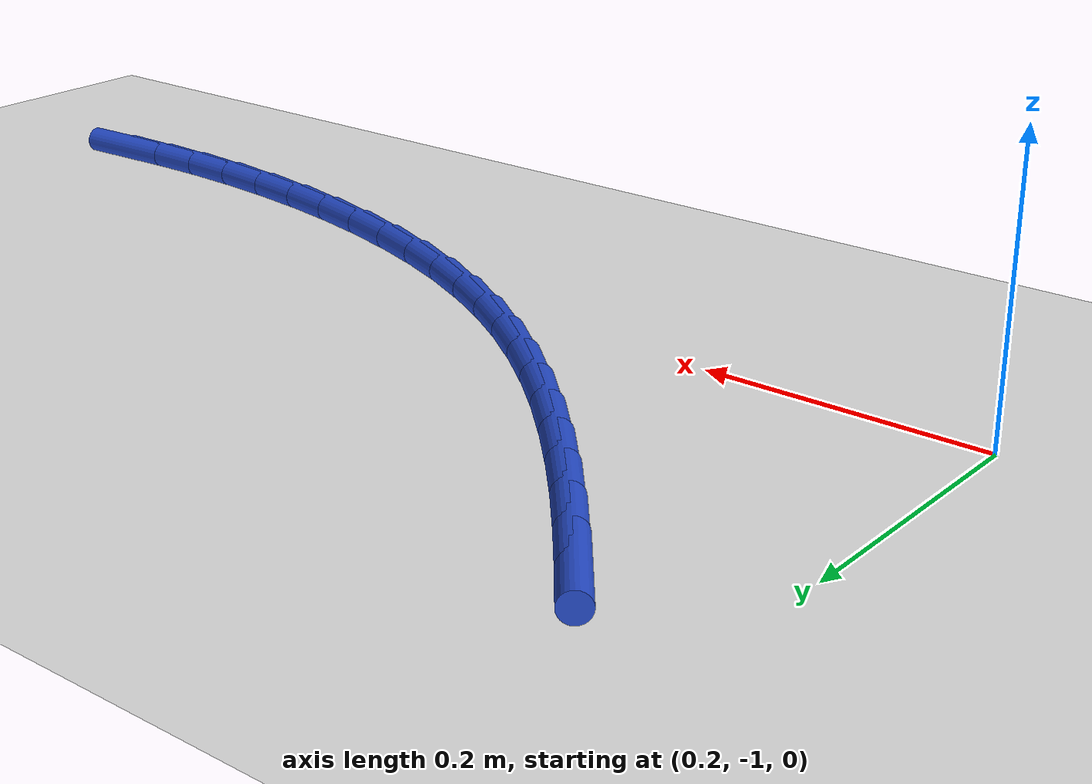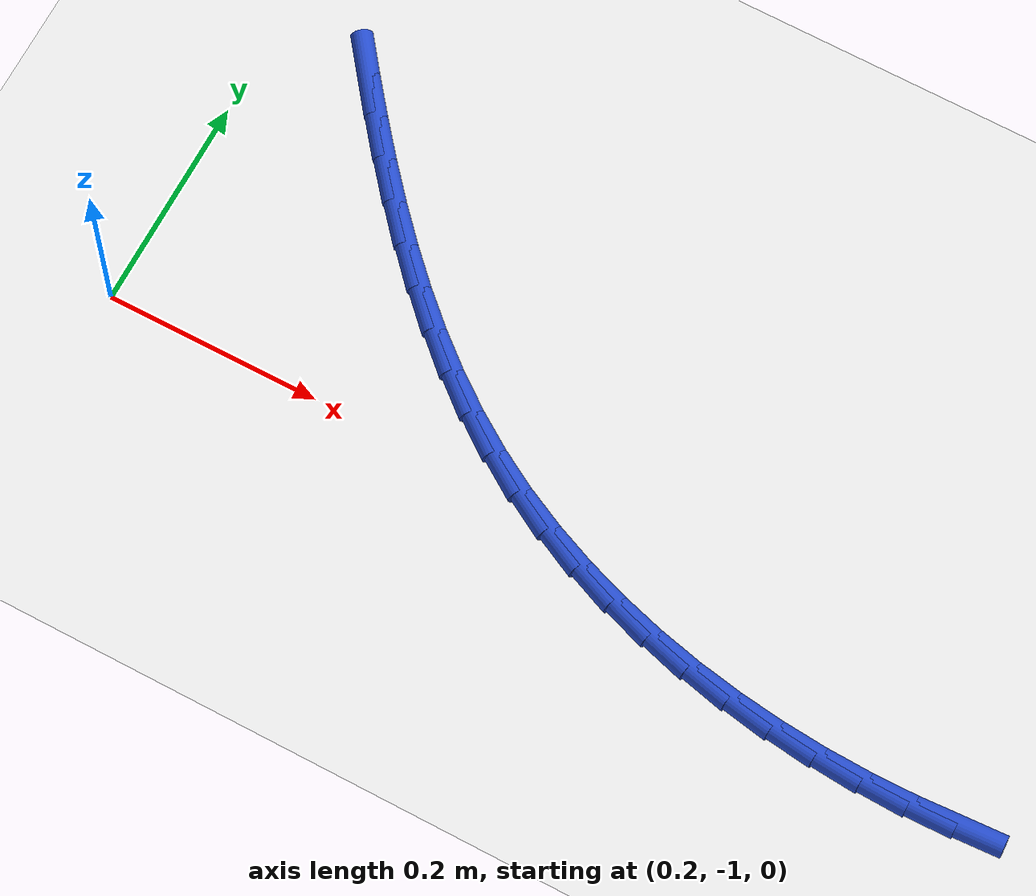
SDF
<sdf version="1.6">
 <world name="default">
  <model name="ground_plane">
   <static>1</static>
   <link name="link">
    <collision name="collision">
     <geometry><plane><normal>0 0 1</normal><size>100 100</size></plane></geometry>
     <surface><friction><ode><mu>100</mu><mu2>50</mu2></ode></friction></surface>
    </collision>
    <visual name="visual">
     <cast_shadows>0</cast_shadows>
     <geometry><plane><normal>0 0 1</normal><size>100 100</size></plane></geometry>
     <material>
      <script><uri>file://media/materials/scripts/gazebo.material</uri><name>Gazebo/WhiteGlow</name></script>
     </material>
    </visual>
   </link>
  </model>
  <model name="line">
   <link name="link_130">
    <pose>1.048853385687259 -1.0821654567974808 0.01 0 1.57 0.05538316207142231</pose>
    <collision name="collision">
     <geometry><cylinder><radius>0.01</radius><length>0.08</length></cylinder></geometry>
    </collision>
    <visual name="visual">
     <material>
      <script><name>Gazebo/Blue</name><uri>file://media/materials/scripts/gazebo.material</uri></script>
     </material>
     <geometry><cylinder><radius>0.01</radius><length>0.08</length></cylinder></geometry>
    </visual>
   </link>
   <link name="link_131">
    <pose>1.0066736237751834 -1.0845038967714395 0.01 0 1.57 0.0096983112459769</pose>
    <collision name="collision">
     <geometry><cylinder><radius>0.01</radius><length>0.08</length></cylinder></geometry>
    </collision>
    <visual name="visual">
     <material>
      <script><name>Gazebo/Blue</name><uri>file://media/materials/scripts/gazebo.material</uri></script>
     </material>
     <geometry><cylinder><radius>0.01</radius><length>0.08</length></cylinder></geometry>
    </visual>
   </link>
   <link name="link_132">
    <pose>0.9641972193043956 -1.084915859078701 0.01 0 1.57 -0.03627948145156975</pose>
    <collision name="collision">
     <geometry><cylinder><radius>0.01</radius><length>0.08</length></cylinder></geometry>
    </collision>
    <visual name="visual">
     <material>
      <script><name>Gazebo/Blue</name><uri>file://media/materials/scripts/gazebo.material</uri></script>
     </material>
     <geometry><cylinder><radius>0.01</radius><length>0.08</length></cylinder></geometry>
    </visual>
   </link>
   <link name="link_133">
    <pose>0.9215979966990063 -1.083369702962181 0.01 0 1.57 -0.08291320341871405</pose>
    <collision name="collision">
     <geometry><cylinder><radius>0.01</radius><length>0.08</length></cylinder></geometry>
    </collision>
    <visual name="visual">
     <material>
      <script><name>Gazebo/Blue</name><uri>file://media/materials/scripts/gazebo.material</uri></script>
     </material>
     <geometry><cylinder><radius>0.01</radius><length>0.08</length></cylinder></geometry>
    </visual>
   </link>
   <link name="link_134">
    <pose>0.8790497803831284 -1.079833787664796 0.01 0 1.57 -0.1305591021409711</pose>
    <collision name="collision">
     <geometry><cylinder><radius>0.01</radius><length>0.08</length></cylinder></geometry>
    </collision>
    <visual name="visual">
     <material>
      <script><name>Gazebo/Blue</name><uri>file://media/materials/scripts/gazebo.material</uri></script>
     </material>
     <geometry><cylinder><radius>0.01</radius><length>0.08</length></cylinder></geometry>
    </visual>
   </link>
   <link name="link_135">
    <pose>0.8367263947808736 -1.0742764724294616 0.01 0 1.57 -0.1795689746979919</pose>
    <collision name="collision">
     <geometry><cylinder><radius>0.01</radius><length>0.08</length></cylinder></geometry>
    </collision>
    <visual name="visual">
     <material>
      <script><name>Gazebo/Blue</name><uri>file://media/materials/scripts/gazebo.material</uri></script>
     </material>
     <geometry><cylinder><radius>0.01</radius><length>0.08</length></cylinder></geometry>
    </visual>
   </link>
   <link name="link_136">
    <pose>0.7948016643163537 -1.0666661164990945 0.01 0 1.57 -0.23029073022097477</pose>
    <collision name="collision">
     <geometry><cylinder><radius>0.01</radius><length>0.08</length></cylinder></geometry>
    </collision>
    <visual name="visual">
     <material>
      <script><name>Gazebo/Blue</name><uri>file://media/materials/scripts/gazebo.material</uri></script>
     </material>
     <geometry><cylinder><radius>0.01</radius><length>0.08</length></cylinder></geometry>
    </visual>
   </link>
   <link name="link_137">
    <pose>0.7534494134136823 -1.0569710791166103 0.01 0 1.57 -0.2830667332134292</pose>
    <collision name="collision">
     <geometry><cylinder><radius>0.01</radius><length>0.08</length></cylinder></geometry>
    </collision>
    <visual name="visual">
     <material>
      <script><name>Gazebo/Blue</name><uri>file://media/materials/scripts/gazebo.material</uri></script>
     </material>
     <geometry><cylinder><radius>0.01</radius><length>0.08</length></cylinder></geometry>
    </visual>
   </link>
   <link name="link_138">
    <pose>0.7128434664969707 -1.0451597195249258 0.01 0 1.57 -0.338229308203534</pose>
    <collision name="collision">
     <geometry><cylinder><radius>0.01</radius><length>0.08</length></cylinder></geometry>
    </collision>
    <visual name="visual">
     <material>
      <script><name>Gazebo/Blue</name><uri>file://media/materials/scripts/gazebo.material</uri></script>
     </material>
     <geometry><cylinder><radius>0.01</radius><length>0.08</length></cylinder></geometry>
    </visual>
   </link>
   <link name="link_139">
    <pose>0.6731576479903316 -1.031200396966957 0.01 0 1.57 -0.3960926836818129</pose>
    <collision name="collision">
     <geometry><cylinder><radius>0.01</radius><length>0.08</length></cylinder></geometry>
    </collision>
    <visual name="visual">
     <material>
      <script><name>Gazebo/Blue</name><uri>file://media/materials/scripts/gazebo.material</uri></script>
     </material>
     <geometry><cylinder><radius>0.01</radius><length>0.08</length></cylinder></geometry>
    </visual>
   </link>
   <link name="link_140">
    <pose>0.6345657823178767 -1.0150614706856194 0.01 0 1.57 -0.45694063458738227</pose>
    <collision name="collision">
     <geometry><cylinder><radius>0.01</radius><length>0.08</length></cylinder></geometry>
    </collision>
    <visual name="visual">
     <material>
      <script><name>Gazebo/Blue</name><uri>file://media/materials/scripts/gazebo.material</uri></script>
     </material>
     <geometry><cylinder><radius>0.01</radius><length>0.08</length></cylinder></geometry>
    </visual>
   </link>
   <link name="link_141">
    <pose>0.5972416939037187 -0.9967112999238301 0.01 0 1.57 -0.5209928449707943</pose>
    <collision name="collision">
     <geometry><cylinder><radius>0.01</radius><length>0.08</length></cylinder></geometry>
    </collision>
    <visual name="visual">
     <material>
      <script><name>Gazebo/Blue</name><uri>file://media/materials/scripts/gazebo.material</uri></script>
     </material>
     <geometry><cylinder><radius>0.01</radius><length>0.08</length></cylinder></geometry>
    </visual>
   </link>
   <link name="link_142">
    <pose>0.5613586479387285 -0.9761187049615878 0.01 0 1.57 -0.5857814205725103</pose>
    <collision name="collision">
     <geometry><cylinder><radius>0.01</radius><length>0.08</length></cylinder></geometry>
    </collision>
    <visual name="visual">
     <material>
      <script><name>Gazebo/Blue</name><uri>file://media/materials/scripts/gazebo.material</uri></script>
     </material>
     <geometry><cylinder><radius>0.01</radius><length>0.08</length></cylinder></geometry>
    </visual>
   </link>
   <link name="link_143">
    <pose>0.5270024303856473 -0.9533246247679628 0.01 0 1.57 -0.6456506040045679</pose>
    <collision name="collision">
     <geometry><cylinder><radius>0.01</radius><length>0.08</length></cylinder></geometry>
    </collision>
    <visual name="visual">
     <material>
      <script><name>Gazebo/Blue</name><uri>file://media/materials/scripts/gazebo.material</uri></script>
     </material>
     <geometry><cylinder><radius>0.01</radius><length>0.08</length></cylinder></geometry>
    </visual>
   </link>
   <link name="link_144">
    <pose>0.49407706845325405 -0.9285198419188162 0.01 0 1.57 -0.6996052867104718</pose>
    <collision name="collision">
     <geometry><cylinder><radius>0.01</radius><length>0.08</length></cylinder></geometry>
    </collision>
    <visual name="visual">
     <material>
      <script><name>Gazebo/Blue</name><uri>file://media/materials/scripts/gazebo.material</uri></script>
     </material>
     <geometry><cylinder><radius>0.01</radius><length>0.08</length></cylinder></geometry>
    </visual>
   </link>
   <link name="link_145">
    <pose>0.4624639499270445 -0.90191380314107 0.01 0 1.57 -0.7475155730300735</pose>
    <collision name="collision">
     <geometry><cylinder><radius>0.01</radius><length>0.08</length></cylinder></geometry>
    </collision>
    <visual name="visual">
     <material>
      <script><name>Gazebo/Blue</name><uri>file://media/materials/scripts/gazebo.material</uri></script>
     </material>
     <geometry><cylinder><radius>0.01</radius><length>0.08</length></cylinder></geometry>
    </visual>
   </link>
   <link name="link_146">
    <pose>0.4320444625925142 -0.8737159551616464 0.01 0 1.57 -0.7893988782733957</pose>
    <collision name="collision">
     <geometry><cylinder><radius>0.01</radius><length>0.08</length></cylinder></geometry>
    </collision>
    <visual name="visual">
     <material>
      <script><name>Gazebo/Blue</name><uri>file://media/materials/scripts/gazebo.material</uri></script>
     </material>
     <geometry><cylinder><radius>0.01</radius><length>0.08</length></cylinder></geometry>
    </visual>
   </link>
   <link name="link_147">
    <pose>0.4026999942351588 -0.8441357447074672 0.01 0 1.57 -0.8253670101094515</pose>
    <collision name="collision">
     <geometry><cylinder><radius>0.01</radius><length>0.08</length></cylinder></geometry>
    </collision>
    <visual name="visual">
     <material>
      <script><name>Gazebo/Blue</name><uri>file://media/materials/scripts/gazebo.material</uri></script>
     </material>
     <geometry><cylinder><radius>0.01</radius><length>0.08</length></cylinder></geometry>
    </visual>
   </link>
   <link name="link_148">
    <pose>0.3743119326404748 -0.8133826185054557 0.01 0 1.57 -0.8555804756422423</pose>
    <collision name="collision">
     <geometry><cylinder><radius>0.01</radius><length>0.08</length></cylinder></geometry>
    </collision>
    <visual name="visual">
     <material>
      <script><name>Gazebo/Blue</name><uri>file://media/materials/scripts/gazebo.material</uri></script>
     </material>
     <geometry><cylinder><radius>0.01</radius><length>0.08</length></cylinder></geometry>
    </visual>
   </link>
   <link name="link_149">
    <pose>0.3467616655939576 -0.7816660232825333 0.01 0 1.57 -0.8802120267261441</pose>
    <collision name="collision">
     <geometry><cylinder><radius>0.01</radius><length>0.08</length></cylinder></geometry>
    </collision>
    <visual name="visual">
     <material>
      <script><name>Gazebo/Blue</name><uri>file://media/materials/scripts/gazebo.material</uri></script>
     </material>
     <geometry><cylinder><radius>0.01</radius><length>0.08</length></cylinder></geometry>
    </visual>
   </link>
   <link name="link_150">
    <pose>0.31993058088110293 -0.7491954057656227 0.01 0 1.57 -0.8994190978658563</pose>
    <collision name="collision">
     <geometry><cylinder><radius>0.01</radius><length>0.08</length></cylinder></geometry>
    </collision>
    <visual name="visual">
     <material>
      <script><name>Gazebo/Blue</name><uri>file://media/materials/scripts/gazebo.material</uri></script>
     </material>
     <geometry><cylinder><radius>0.01</radius><length>0.08</length></cylinder></geometry>
    </visual>
   </link>
   <link name="link_151">
    <pose>0.2937000662874065 -0.7161802126816454 0.01 0 1.57 -0.9133236444284558</pose>
    <collision name="collision">
     <geometry><cylinder><radius>0.01</radius><length>0.08</length></cylinder></geometry>
    </collision>
    <visual name="visual">
     <material>
      <script><name>Gazebo/Blue</name><uri>file://media/materials/scripts/gazebo.material</uri></script>
     </material>
     <geometry><cylinder><radius>0.01</radius><length>0.08</length></cylinder></geometry>
    </visual>
   </link>
  </model>
 </world>
</sdf>
